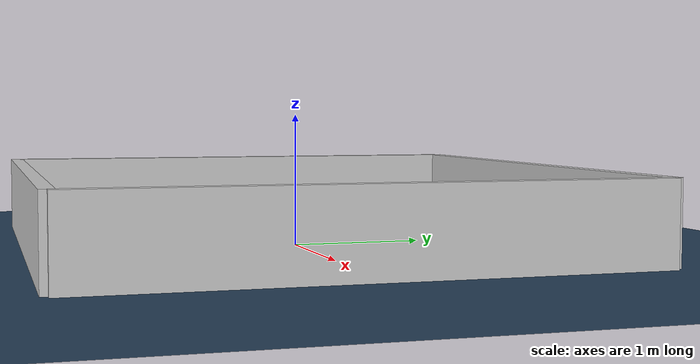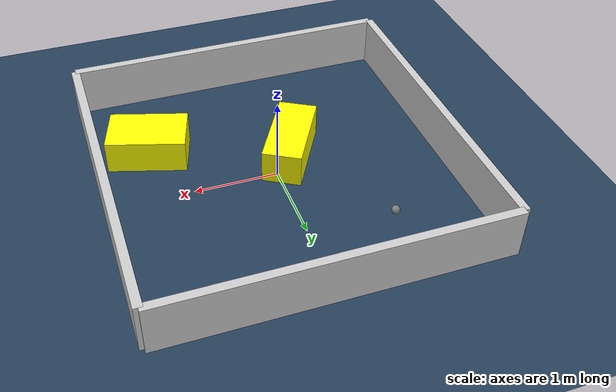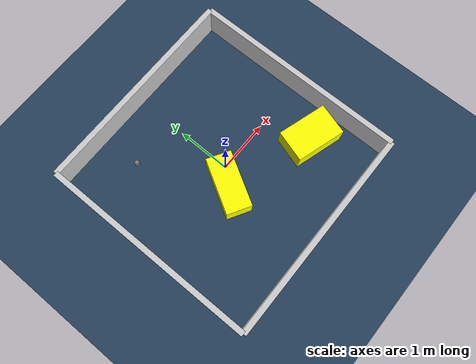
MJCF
<?xml version="1.0" ?>
<mujoco model="generated_environment">
  <option timestep="0.01" integrator="RK4" cone="elliptic"/>
  <default>
    <geom density="1"/>
  </default>
  <asset>
    <texture builtin="gradient" height="3072" rgb1="0.3 0.5 0.7" rgb2="0 0 0" type="skybox" width="512"/>
    <texture builtin="checker" height="300" mark="edge" markrgb="0.8 0.8 0.8" name="groundplane" rgb1="0.2 0.3 0.4" rgb2="0.1 0.2 0.3" type="2d" width="300"/>
    <material name="groundplane" reflectance="0.2" texrepeat="5 5" texture="groundplane" texuniform="true"/>
    <material name="robot" rgba="0.0 1.0 0.0 1"/>
  </asset>
  <worldbody>
    <light dir="0 0 -1" directional="true" pos="0 0 1.5"/>
    <geom condim="4" friction="1.0 0.005 0.001" material="groundplane" name="floor" size="0 0 0.05" type="plane"/>
    <body name="walls">
      <geom name="wall_1" condim="4" pos="-2.0 0.0 0.3" rgba="0.800000011920929 0.800000011920929 0.800000011920929 1.0" size="0.05 2.0 0.3" type="box"/>
      <geom name="wall_2" condim="4" pos="2.0 0.0 0.3" rgba="0.800000011920929 0.800000011920929 0.800000011920929 1.0" size="0.05 2.0 0.3" type="box"/>
      <geom name="wall_3" condim="4" pos="0.0 -2.0 0.3" rgba="0.800000011920929 0.800000011920929 0.800000011920929 1.0" size="2.0 0.05 0.3" type="box"/>
      <geom name="wall_4" condim="4" pos="0.0 2.0 0.3" rgba="0.800000011920929 0.800000011920929 0.800000011920929 1.0" size="2.0 0.05 0.3" type="box"/>
    </body>
    <body name="robot">
      <joint name="joint_x" type="slide" pos="0 0 0" axis="1 0 0"/>
      <joint name="joint_y" type="slide" pos="0 0 0" axis="0 1 0"/>
      <geom name="robot" type="sphere" pos="-0.956458949492568 1.1984236736585396 0.2" size="0.05" mass="5." friction="1.0 0.005 0.0001" condim="4"/>
      <site name="sensor_ball"/>
    </body>
    <body name="obstacle_1_movable">
      <geom name="obstacle_1_movable" condim="4" pos="1.3535073840364467 -0.8252762312291596 0.2" euler="0 0 252.9043334806743" friction="1.0 0.005 0.001" rgba="1 1 0 1" size="0.29736810788470736 0.4662585315914699 0.2" type="box" mass="0.1"/>
      <joint type="free"/>
    </body>
    <body name="obstacle_2_movable">
      <geom name="obstacle_2_movable" condim="4" pos="-0.25113237035069313 -0.27932476637637405 0.2" euler="0 0 329.75570343440927" friction="1.0 0.005 0.001" rgba="1 1 0 1" size="0.2315239166849925 0.5170273660320934 0.2" type="box" mass="0.1"/>
      <joint type="free"/>
    </body>
  </worldbody>
  <actuator>
    <motor name="actuator_x" joint="joint_x" gear="1" ctrlrange="-1 1"/>
    <motor name="actuator_y" joint="joint_y" gear="1" ctrlrange="-1 1"/>
  </actuator>
</mujoco>
